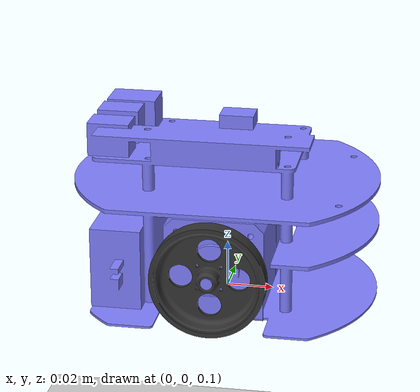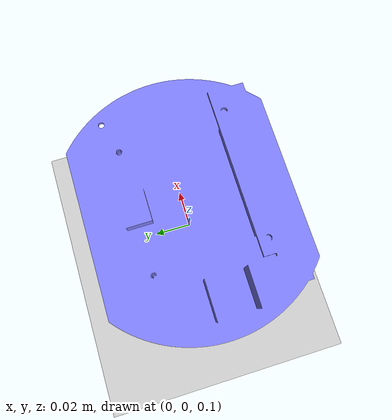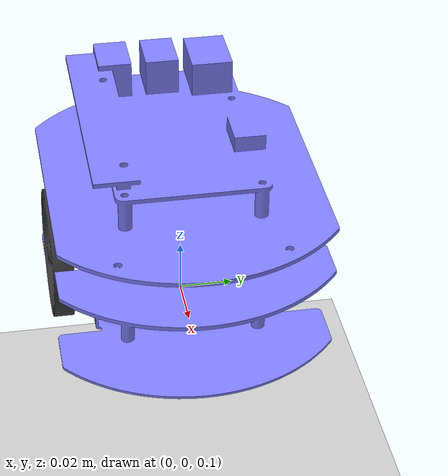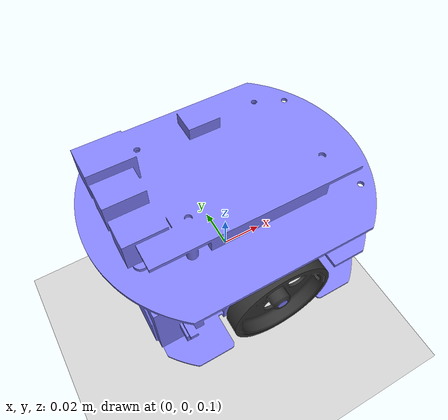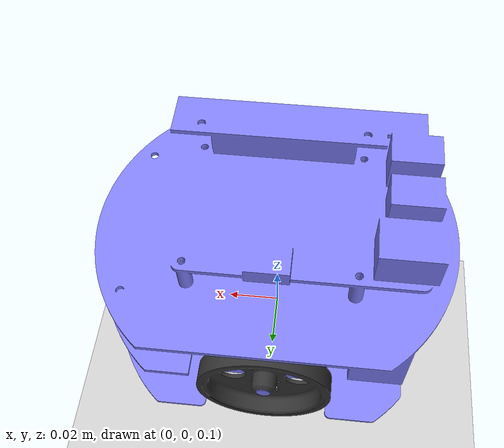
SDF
<?xml version="1.0" ?>
<sdf version="1.6">
    <world name="diff_drive">

        <physics name="1ms" type="ode">
            <max_step_size>0.001</max_step_size>
            <real_time_factor>1.0</real_time_factor>
        </physics>
        <plugin
            filename="libignition-gazebo-physics-system.so"
            name="ignition::gazebo::systems::Physics">
        </plugin>
        <plugin
            filename="libignition-gazebo-user-commands-system.so"
            name="ignition::gazebo::systems::UserCommands">
        </plugin>
        <plugin
            filename="libignition-gazebo-scene-broadcaster-system.so"
            name="ignition::gazebo::systems::SceneBroadcaster">
        </plugin>

        <gui fullscreen="0">

            <!-- 3D scene -->
            <plugin filename="GzScene3D" name="3D View">
                <ignition-gui>
                    <title>3D View</title>
                    <property type="bool" key="showTitleBar">false</property>
                    <property type="string" key="state">docked</property>
                </ignition-gui>

                <engine>ogre2</engine>
                <scene>scene</scene>
                <ambient_light>0.4 0.4 0.4</ambient_light>
                <background_color>0.8 0.8 0.8</background_color>
                <camera_pose>-6 0 6 0 0.5 0</camera_pose>
            </plugin>

            <!-- World control -->
            <plugin filename="WorldControl" name="World control">
                <ignition-gui>
                    <title>World control</title>
                    <property type="bool" key="showTitleBar">false</property>
                    <property type="bool" key="resizable">false</property>
                    <property type="double" key="height">72</property>
                    <property type="double" key="width">121</property>
                    <property type="double" key="z">1</property>

                    <property type="string" key="state">floating</property>
                    <anchors target="3D View">
                        <line own="left" target="left"/>
                        <line own="bottom" target="bottom"/>
                    </anchors>
                </ignition-gui>

                <play_pause>false</play_pause>
                <step>true</step>
                <start_paused>true</start_paused>
                <service>/world/diff_drive/control</service>
                <stats_topic>/world/diff_drive/stats</stats_topic>

            </plugin>

            <!-- World statistics -->
            <plugin filename="WorldStats" name="World stats">
                <ignition-gui>
                    <title>World stats</title>
                    <property type="bool" key="showTitleBar">false</property>
                    <property type="bool" key="resizable">false</property>
                    <property type="double" key="height">110</property>
                    <property type="double" key="width">290</property>
                    <property type="double" key="z">1</property>

                    <property type="string" key="state">floating</property>
                    <anchors target="3D View">
                        <line own="right" target="right"/>
                        <line own="bottom" target="bottom"/>
                    </anchors>
                </ignition-gui>

                <sim_time>true</sim_time>
                <real_time>true</real_time>
                <real_time_factor>true</real_time_factor>
                <iterations>true</iterations>
                <topic>/world/diff_drive/stats</topic>

            </plugin>

        </gui>

        <light type="directional" name="sun">
            <cast_shadows>true</cast_shadows>
            <pose>0 0 10 0 0 0</pose>
            <diffuse>1 1 1 1</diffuse>
            <specular>0.5 0.5 0.5 1</specular>
            <attenuation>
                <range>1000</range>
                <constant>0.9</constant>
                <linear>0.01</linear>
                <quadratic>0.001</quadratic>
            </attenuation>
            <direction>-0.5 0.1 -0.9</direction>
        </light>

        <model name="ground_plane">
            <static>true</static>
            <link name="link">
                <collision name="collision">
                    <geometry>
                        <plane>
                            <normal>0 0 1</normal>
                        </plane>
                    </geometry>
                </collision>
                <visual name="visual">
                    <geometry>
                        <plane>
                            <normal>0 0 1</normal>
                            <size>100 100</size>
                        </plane>
                    </geometry>
                    <material>
                        <ambient>0.8 0.8 0.8 1</ambient>
                        <diffuse>0.8 0.8 0.8 1</diffuse>
                        <specular>0.8 0.8 0.8 1</specular>
                    </material>
                </visual>
            </link>
        </model>

        <!-- Raspberry Pi Mouse -->
        <model name='raspimouse'>
            <pose>0 0 0.1 0 0 0</pose>

            <link name='body'>
                <pose>0 0 0 0 0 0</pose>
                <inertial>
                    <mass>0.7186</mass>
                    <inertia>
                        <ixx>0.001238161833</ixx>
                        <ixy>0.000000904986</ixy>
                        <ixz>0.000100297310</ixz>
                        <iyy>0.001368529369</iyy>
                        <iyz>0.000022118177</iyz>
                        <izz>0.000784319117</izz>
                    </inertia>
                </inertial>
                <visual name='visual'>
                    <geometry>
                        <mesh>
                            <uri>file:///home/ubuntu/catkin_ws/src/ros_ign_gazebo_raspimouse/models/raspimouse/meshes/dae/body/RasPiMouse_body.dae</uri>
                        </mesh>
                    </geometry>
                    <material>
                        <ambient>0.5 0.5 1.0 1</ambient>
                        <diffuse>0.5 0.5 1.0 1</diffuse>
                        <specular>0.0 0.0 1.0 1</specular>
                    </material>
                </visual>
                <collision name='collision'>
                    <geometry>
                        <mesh>
                            <uri>file:///home/ubuntu/catkin_ws/src/ros_ign_gazebo_raspimouse/models/raspimouse/meshes/dae/body/RasPiMouse_body.dae</uri>
                        </mesh>
                    </geometry>
                </collision>
            </link>

            <link name='left_wheel'>
                <!-- 進行方向　軸方向　ヨー軸方向-->
                <pose>0 0.0425 0.02215 -1.57 0 0</pose>
                <inertial>
                    <mass>0.0113</mass>
                    <inertia>
                        <ixx>0.000002208187</ixx>
                        <ixy>0.000000000001</ixy>
                        <ixz>0.000000004787</ixz>
                        <iyy>0.00000218412</iyy>
                        <iyz>0.000000000003</iyz>
                        <izz>0.000004078299</izz>
                    </inertia>
                </inertial>
                <visual name='visual'>
                    <geometry>
                        <mesh>
                            <uri>file:///home/ubuntu/catkin_ws/src/ros_ign_gazebo_raspimouse/models/raspimouse/meshes/dae/wheel/RasPiMouse_wheel.dae</uri>
                        </mesh>
                    </geometry>
                    <material>
                        <ambient>0.2 0.2 0.2 1</ambient>
                        <diffuse>0.2 0.2 0.2 1</diffuse>
                        <specular>0.2 0.2 0.2 1</specular>
                    </material>
                </visual>
                <collision name='collision'>
                    <geometry>
                        <mesh>
                            <uri>file:///home/ubuntu/catkin_ws/src/ros_ign_gazebo_raspimouse/models/raspimouse/meshes/dae/wheel/RasPiMouse_wheel.dae</uri>
                        </mesh>
                    </geometry>
                </collision>
            </link>

            <link name='right_wheel'>
                <pose>0 -0.0425 0.02215 1.5707 0 0</pose>
                <inertial>
                    <mass>0.0113</mass>
                    <inertia>
                        <ixx>0.000002208187</ixx>
                        <ixy>0.000000000001</ixy>
                        <ixz>0.000000004787</ixz>
                        <iyy>0.00000218412</iyy>
                        <iyz>0.000000000003</iyz>
                        <izz>0.000004078299</izz>
                    </inertia>
                </inertial>
                <visual name='visual'>
                    <geometry>
                        <mesh>
                            <uri>file:///home/ubuntu/catkin_ws/src/ros_ign_gazebo_raspimouse/models/raspimouse/meshes/dae/wheel/RasPiMouse_wheel.dae</uri>
                        </mesh>
                    </geometry>
                    <material>
                        <ambient>0.2 0.2 0.2 1</ambient>
                        <diffuse>0.2 0.2 0.2 1</diffuse>
                        <specular>0.2 0.2 0.2 1</specular>
                    </material>
                </visual>
                <collision name='collision'>
                    <geometry>
                        <mesh>
                            <uri>file:///home/ubuntu/catkin_ws/src/ros_ign_gazebo_raspimouse/models/raspimouse/meshes/dae/wheel/RasPiMouse_wheel.dae</uri>
                        </mesh>
                    </geometry>
                </collision>
            </link>

            <joint name='left_wheel_joint' type='revolute'>
                <parent>body</parent>
                <child>left_wheel</child>
                <axis>
                    <xyz>0 0 1</xyz>
                    <limit>
                        <lower>-1.79769e+308</lower>
                        <upper>1.79769e+308</upper>
                    </limit>
                </axis>
            </joint>

            <joint name='right_wheel_joint' type='revolute'>
                <parent>body</parent>
                <child>right_wheel</child>
                <axis>
                    <xyz>0 0 -1</xyz>
                    <limit>
                        <lower>-1.79769e+308</lower>
                        <upper>1.79769e+308</upper>
                    </limit>
                </axis>
            </joint>

            <plugin
                filename="libignition-gazebo-diff-drive-system.so"
                name="ignition::gazebo::systems::DiffDrive">
                <left_joint>left_wheel_joint</left_joint>
                <right_joint>right_wheel_joint</right_joint>
                <wheel_separation>0.0935</wheel_separation>
                <wheel_radius>0.024</wheel_radius>
            </plugin>

        </model>

    </world>
</sdf>
